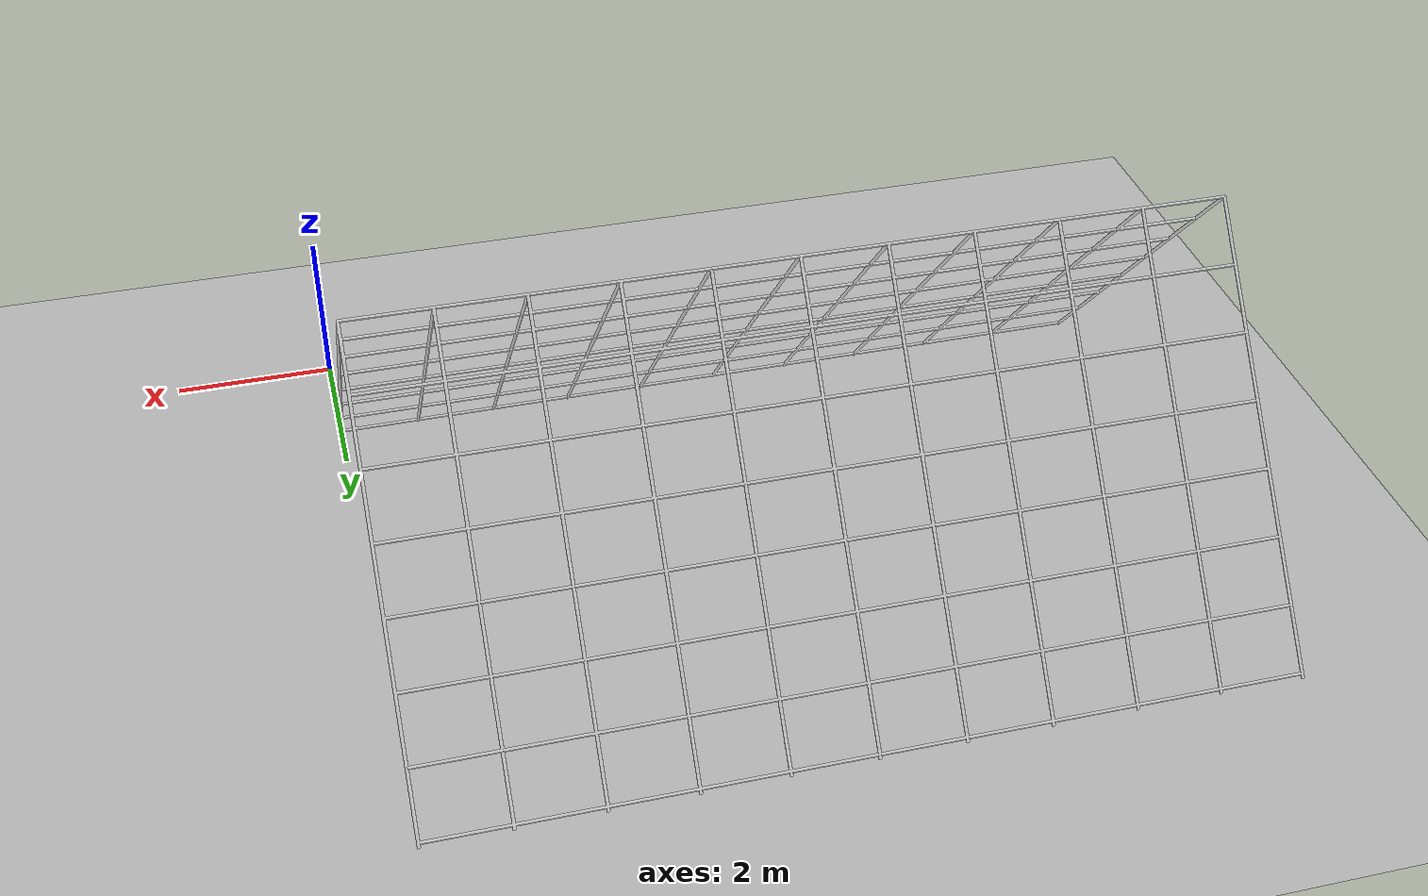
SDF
<sdf version='1.9'>
  <world name='default'>
    <physics type="ode">
      <max_step_size>0.004</max_step_size>
      <real_time_factor>1.0</real_time_factor>
      <real_time_update_rate>1000</real_time_update_rate>
    </physics>
    <plugin name='gz::sim::systems::Physics' filename='gz-sim-physics-system'/>
    <plugin name='gz::sim::systems::UserCommands' filename='gz-sim-user-commands-system'/>
    <plugin name='gz::sim::systems::SceneBroadcaster' filename='gz-sim-scene-broadcaster-system'/>
    <plugin name='gz::sim::systems::Contact' filename='gz-sim-contact-system'/>
    <plugin name='gz::sim::systems::Imu' filename='gz-sim-imu-system'/>
    <plugin name='gz::sim::systems::AirPressure' filename='gz-sim-air-pressure-system'/>
    <plugin name='gz::sim::systems::Sensors' filename='gz-sim-sensors-system'>
      <render_engine>ogre2</render_engine>
    </plugin>
    <gui fullscreen='false'>
      <plugin name='3D View' filename='GzScene3D'>
        <gz-gui>
          <title>3D View</title>
          <property type='bool' key='showTitleBar'>0</property>
          <property type='string' key='state'>docked</property>
        </gz-gui>
        <engine>ogre2</engine>
        <scene>scene</scene>
        <ambient_light>0.5984631152222222 0.5984631152222222 0.5984631152222222</ambient_light>
        <background_color>0.8984631152222222 0.8984631152222222 0.8984631152222222</background_color>
        <camera_pose>-6 0 6 0 0.5 0</camera_pose>
      </plugin>
      <plugin name='World control' filename='WorldControl'>
        <gz-gui>
          <title>World control</title>
          <property type='bool' key='showTitleBar'>0</property>
          <property type='bool' key='resizable'>0</property>
          <property type='double' key='height'>72</property>
          <property type='double' key='width'>121</property>
          <property type='double' key='z'>1</property>
          <property type='string' key='state'>floating</property>
          <anchors target='3D View'>
            <line own='left' target='left'/>
            <line own='bottom' target='bottom'/>
          </anchors>
        </gz-gui>
        <play_pause>1</play_pause>
        <step>1</step>
        <start_paused>1</start_paused>
      </plugin>
      <plugin name='World stats' filename='WorldStats'>
        <gz-gui>
          <title>World stats</title>
          <property type='bool' key='showTitleBar'>0</property>
          <property type='bool' key='resizable'>0</property>
          <property type='double' key='height'>110</property>
          <property type='double' key='width'>290</property>
          <property type='double' key='z'>1</property>
          <property type='string' key='state'>floating</property>
          <anchors target='3D View'>
            <line own='right' target='right'/>
            <line own='bottom' target='bottom'/>
          </anchors>
        </gz-gui>
        <sim_time>1</sim_time>
        <real_time>1</real_time>
        <real_time_factor>1</real_time_factor>
        <iterations>1</iterations>
      </plugin>
      <plugin name='Entity tree' filename='EntityTree'/>
    </gui>
    <gravity>0 0 -9.8</gravity>
    <magnetic_field>6e-06 2.3e-05 -4.2e-05</magnetic_field>
    <atmosphere type='adiabatic'/>
    <scene>
      <grid>false</grid>
      <ambient>0.4 0.4 0.4 1</ambient>
      <background>0.7 0.7 0.7 1</background>
      <shadows>true</shadows>
    </scene>
   <plugin name="gz::sim::systems::ApplyLinkWrench" filename="gz-sim7-apply-link-wrench-system">
   </plugin>

    <include>
    <uri>model://trellis</uri>
    <pose>-5 5 0.05 0 0 0</pose>
    </include>

 <model name="grass_plane_with_mesh">
  <static>true</static>
  <link name="link">
    <collision name="collision">
      <pose>0 0 0 0 0 0</pose>
      <geometry>
        <plane>
          <normal>0 0 1</normal>
          <size>250 250</size>
        </plane>
      </geometry>
      <surface>
        <friction>
          <ode/>
        </friction>
        <bounce/>
        <contact/>
      </surface>
    </collision>
    <visual name="grass_visual">
      <pose>0 0 0 0 0 0</pose>
      <cast_shadows>false</cast_shadows>
      <geometry>
        <mesh>
          <uri>file://grass_plane/meshes/grass_plane.dae</uri>
        </mesh>
      </geometry>
    </visual>
    <pose>0 0 0 0 0 0</pose>
    <inertial>
      <pose>0 0 0 0 -0 0</pose>
      <mass>1</mass>
      <inertia>
        <ixx>1</ixx>
        <ixy>0</ixy>
        <ixz>0</ixz>
        <iyy>1</iyy>
        <iyz>0</iyz>
        <izz>1</izz>
      </inertia>
    </inertial>
    <enable_wind>false</enable_wind>
  </link>
  <pose>0 0 0 0 -0 0</pose>
  <self_collide>false</self_collide>
</model>

    <light name='sunUTC' type='directional'>
      <pose>0 0 500 0 -0 0</pose>
      <cast_shadows>true</cast_shadows>
      <intensity>1</intensity>
      <direction>0.001 0.625 -0.78</direction>
      <diffuse>0.904 0.904 0.904 1</diffuse>
      <specular>0.271 0.271 0.271 1</specular>
      <attenuation>
        <range>2000</range>
        <linear>0</linear>
        <constant>1</constant>
        <quadratic>0</quadratic>
      </attenuation>
      <spot>
        <inner_angle>0</inner_angle>
        <outer_angle>0</outer_angle>
        <falloff>0</falloff>
      </spot>
    </light>

  </world>
</sdf>

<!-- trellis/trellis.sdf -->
<sdf version="1.6">
  <model name="trellis">
    <static>true</static> <!-- Cambia in true se vuoi che sia immobile -->
    <link name="link">
      <inertial>
  <mass>100.0</mass> <!-- Massa aumentata per stabilità -->
  <inertia>
    <ixx>469.27</ixx> <!-- Aggiornare i valori in base alle dimensioni -->
    <ixy>0</ixy>
    <ixz>0</ixz>
    <iyy>469.27</iyy>
    <iyz>0</iyz>
    <izz>0.04</izz>
  </inertia>
</inertial>

      <collision name="collision">
        <geometry>
          <mesh>
            <uri>model://trellis/meshes/trellis.stl</uri>
          </mesh>
        </geometry>
        <surface>
          <friction>
            <ode>
              <mu>0.4</mu> <!-- Attrito statico -->
              <mu2>0.4</mu2> <!-- Attrito dinamico -->
            </ode>
          </friction>
          <bounce>
            <restitution_coefficient>0.05</restitution_coefficient>
          </bounce>
          <contact>
 	 <ode>
    <soft_cfm>1e-5</soft_cfm>
    <soft_erp>0.2</soft_erp>
    <kp>1000.0</kp> <!-- High stiffness -->
    <kd>100.0</kd>     <!-- Increased damping for stability -->
    <max_vel>0.1</max_vel>
    <min_depth>0.001</min_depth>
  </ode>
</contact>

        </surface>
      </collision>
      <visual name="visual">
        <geometry>
          <mesh>
            <uri>model://trellis/meshes/trellis.stl</uri>
          </mesh>
        </geometry>
        <material> <!-- Colore soft giallo -->
         <ambient>0.8 0.8 0.8 1</ambient>
<diffuse>0.8 0.8 0.8 1</diffuse>
<specular>0.2 0.2 0.2 1</specular>
<emissive>0 0 0 1</emissive>

        </material>
      </visual>
    </link>
  </model>
</sdf>
